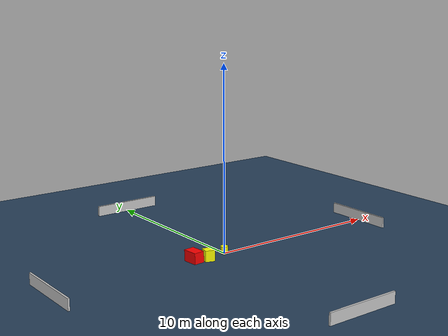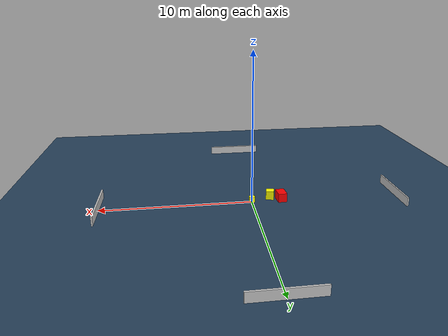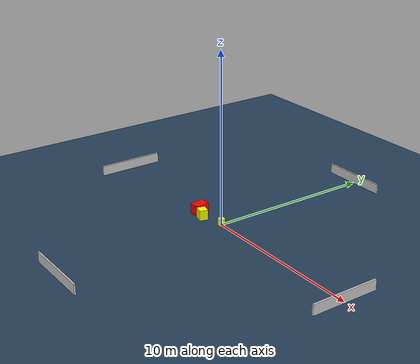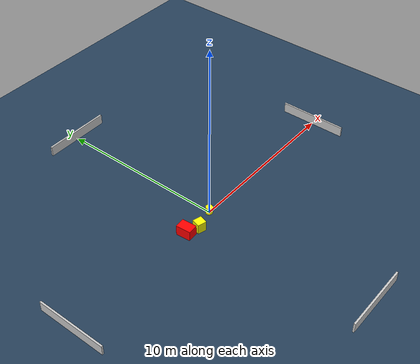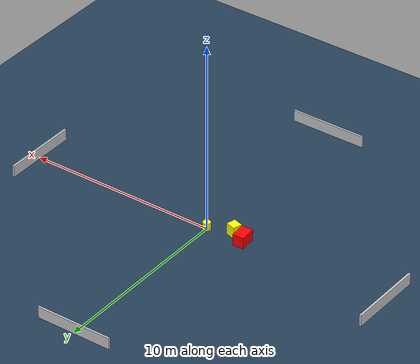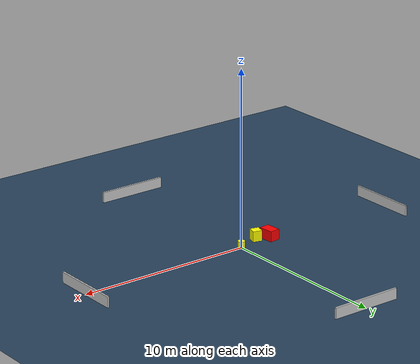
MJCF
<?xml version="1.0" ?>
<mujoco model="generated_environment">
  <option timestep="0.01" integrator="RK4" cone="elliptic"/>
  <default>
    <geom density="1"/>
  </default>
  <asset>
    <texture builtin="gradient" height="3072" name="skybox" rgb1="0.3 0.5 0.7" rgb2="0 0 0" type="skybox" width="512"/>
    <texture builtin="checker" height="300" name="groundplane" rgb1="0.2 0.3 0.4" rgb2="0.1 0.2 0.3" type="2d" width="300"/>
    <material name="groundplane" reflectance="0.2" texrepeat="5 5" texture="groundplane"/>
  </asset>
  <worldbody>
    <light dir="0 0 -1" directional="true" pos="0 0 1.5"/>
    <geom condim="3" friction="0.5 0.005 0.001" material="groundplane" name="floor" pos="0 0 0" size="0 0 0.05" type="plane"/>
    <body name="walls">
      <geom name="wall_1" condim="4" pos="-10.0 0.0 0.3" rgba="0.800000011920929 0.800000011920929 0.800000011920929 1.0" size="0.05 2.0 0.3" type="box"/>
      <geom name="wall_2" condim="4" pos="10.0 0.0 0.3" rgba="0.800000011920929 0.800000011920929 0.800000011920929 1.0" size="0.05 2.0 0.3" type="box"/>
      <geom name="wall_3" condim="4" pos="0.0 -10.0 0.3" rgba="0.800000011920929 0.800000011920929 0.800000011920929 1.0" size="2.0 0.05 0.3" type="box"/>
      <geom name="wall_4" condim="4" pos="0.0 10.0 0.3" rgba="0.800000011920929 0.800000011920929 0.800000011920929 1.0" size="2.0 0.05 0.3" type="box"/>
    </body>
    <body name="robot">
      <joint name="joint_x" type="slide" pos="0 0 0" axis="1 0 0"/>
      <joint name="joint_y" type="slide" pos="0 0 0" axis="0 1 0"/>
      <geom name="robot" type="cylinder" pos="0.0 0.0 0.2" size="0.2 0.2 0.0" mass="5.0" friction="1.0 0.005 0.0001" condim="4" rgba="1.0 1.0 0.0 1.0"/>
    </body>
    <body name="obstacle_1_movable">
      <geom name="obstacle_1_movable" condim="4" pos="-1.2963851970144609 -0.39454042399769523 0.3" euler="0 0 254.43799888055239" friction="0.0 0.005 0.001" rgba="1.0 1.0 0.0 1.0" size="0.2474017085998245 0.2600584134319617 0.3" type="box" mass="0.1"/>
      <joint type="free"/>
    </body>
    <body name="obstacle_2_static">
      <geom name="obstacle_2_static" condim="4" pos="-1.9972482541302616 -0.09619490445985789 0.3" euler="0 0 184.35615103891712" friction="0.0 0.005 0.001" rgba="1.0 0.0 0.0 1.0" size="0.29575004683651235 0.4236518329412107 0.3" type="box"/>
    </body>
  </worldbody>
  <actuator>
    <motor name="actuator_x" joint="joint_x" gear="1" ctrlrange="-1 1"/>
    <motor name="actuator_y" joint="joint_y" gear="1" ctrlrange="-1 1"/>
  </actuator>
</mujoco>
